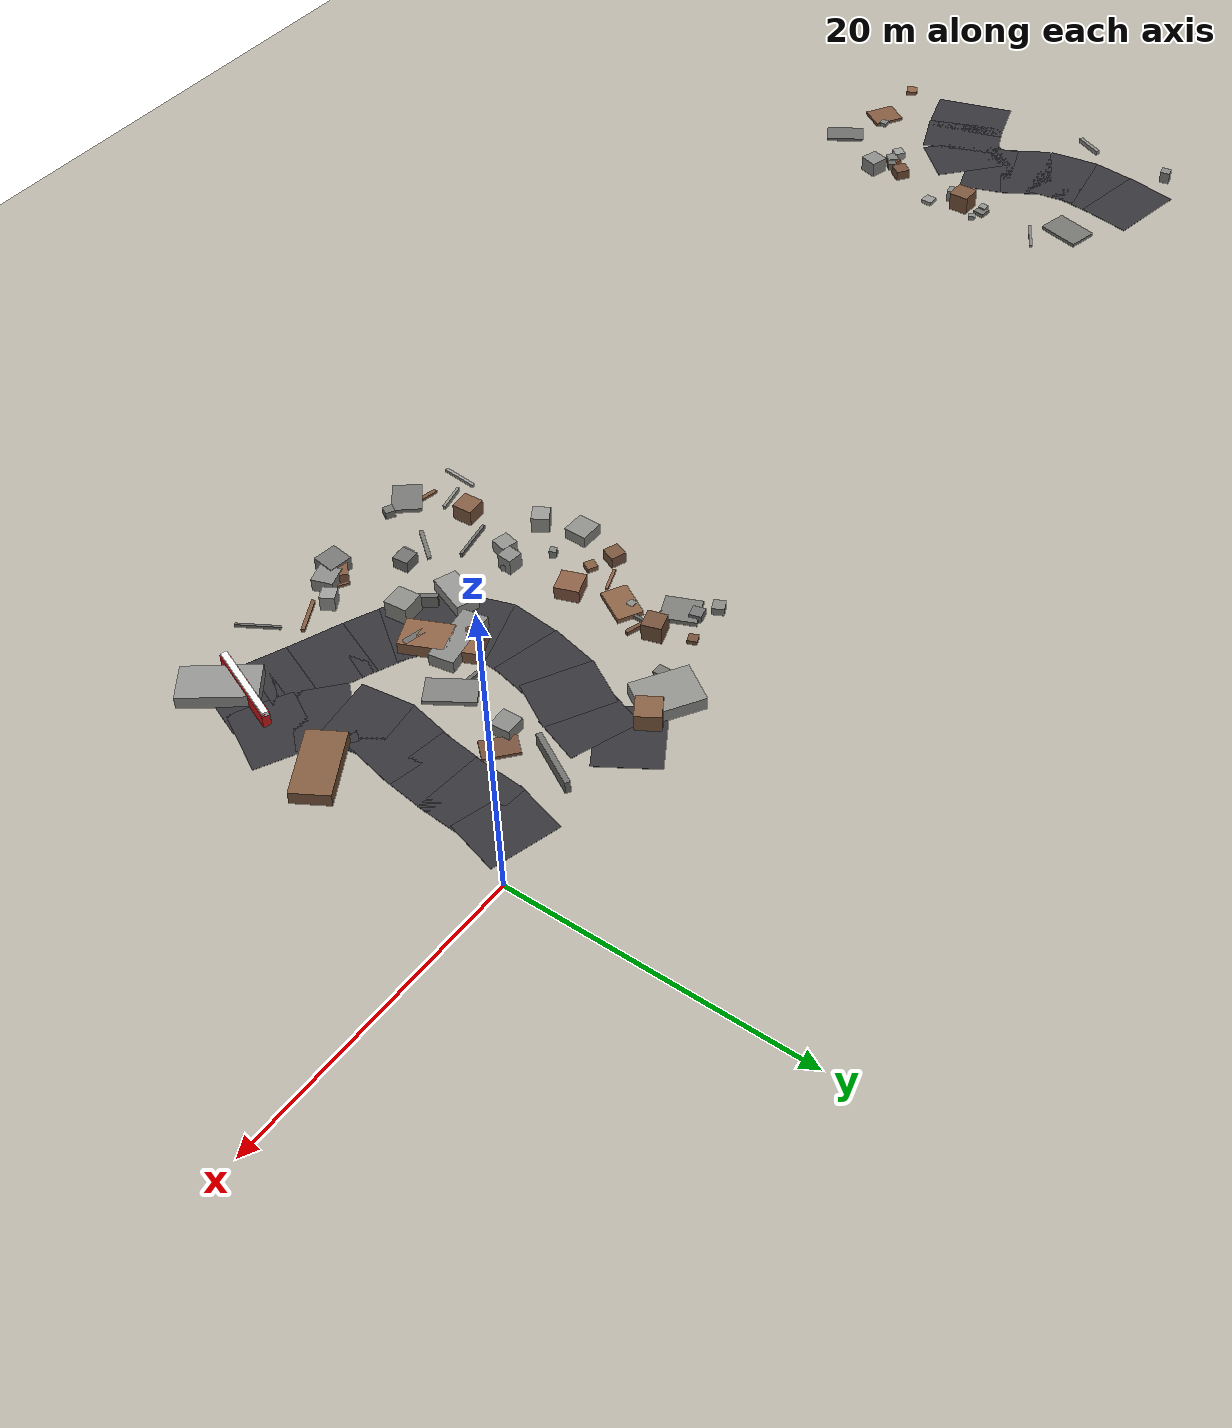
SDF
<sdf version="1.6">
 <world name="navitas_arena">
  <model name="ground_plane">
   <static>true</static>
   <link name="link">
    <collision name="collision">
     <geometry><plane><normal>0 0 1</normal><size>400 400</size></plane></geometry>
     <surface><friction><ode><mu>0.720</mu><mu2>0.720</mu2></ode></friction></surface>
    </collision>
    <visual name="visual">
     <cast_shadows>false</cast_shadows>
     <geometry><plane><normal>0 0 1</normal><size>400 400</size></plane></geometry>
     <material><ambient>0.720 0.700 0.650 1</ambient><diffuse>0.720 0.700 0.650 1</diffuse></material>
    </visual>
   </link>
  </model>
  <model name="road_kolay_3_5">
   <static>true</static>
   <pose>-77.285 -17.460 0.040 0 0 0.309</pose>
   <link name="link">
    <collision name="col"><geometry><box><size>3.737 5.520 0.020</size></box></geometry></collision>
    <visual name="vis">
     <geometry><box><size>3.737 5.520 0.020</size></box></geometry>
     <material><ambient>0.20 0.20 0.22 1</ambient><diffuse>0.20 0.20 0.22 1</diffuse></material>
    </visual>
   </link>
  </model>
  <model name="road_kolay_3_6">
   <static>true</static>
   <pose>-74.788 -16.552 0.040 0 0 0.394</pose>
   <link name="link">
    <collision name="col"><geometry><box><size>3.382 5.520 0.020</size></box></geometry></collision>
    <visual name="vis">
     <geometry><box><size>3.382 5.520 0.020</size></box></geometry>
     <material><ambient>0.20 0.20 0.22 1</ambient><diffuse>0.20 0.20 0.22 1</diffuse></material>
    </visual>
   </link>
  </model>
  <model name="road_kolay_3_7">
   <static>true</static>
   <pose>-72.720 -15.027 0.040 0 0 0.850</pose>
   <link name="link">
    <collision name="col"><geometry><box><size>3.693 5.520 0.020</size></box></geometry></collision>
    <visual name="vis">
     <geometry><box><size>3.693 5.520 0.020</size></box></geometry>
     <material><ambient>0.20 0.20 0.22 1</ambient><diffuse>0.20 0.20 0.22 1</diffuse></material>
    </visual>
   </link>
  </model>
  <model name="road_kolay_3_8">
   <static>true</static>
   <pose>-72.225 -12.817 0.040 0 0 1.923</pose>
   <link name="link">
    <collision name="col"><geometry><box><size>3.374 5.520 0.020</size></box></geometry></collision>
    <visual name="vis">
     <geometry><box><size>3.374 5.520 0.020</size></box></geometry>
     <material><ambient>0.20 0.20 0.22 1</ambient><diffuse>0.20 0.20 0.22 1</diffuse></material>
    </visual>
   </link>
  </model>
  <model name="road_kolay_3_9">
   <static>true</static>
   <pose>-73.377 -10.426 0.040 0 0 2.103</pose>
   <link name="link">
    <collision name="col"><geometry><box><size>3.756 5.520 0.020</size></box></geometry></collision>
    <visual name="vis">
     <geometry><box><size>3.756 5.520 0.020</size></box></geometry>
     <material><ambient>0.20 0.20 0.22 1</ambient><diffuse>0.20 0.20 0.22 1</diffuse></material>
    </visual>
   </link>
  </model>
  <model name="road_kolay_3_10">
   <static>true</static>
   <pose>-74.319 -7.898 0.040 0 0 1.736</pose>
   <link name="link">
    <collision name="col"><geometry><box><size>3.532 5.520 0.020</size></box></geometry></collision>
    <visual name="vis">
     <geometry><box><size>3.532 5.520 0.020</size></box></geometry>
     <material><ambient>0.20 0.20 0.22 1</ambient><diffuse>0.20 0.20 0.22 1</diffuse></material>
    </visual>
   </link>
  </model>
  <model name="road_kolay_3_11">
   <static>true</static>
   <pose>-74.399 -5.200 0.040 0 0 1.473</pose>
   <link name="link">
    <collision name="col"><geometry><box><size>3.713 5.520 0.020</size></box></geometry></collision>
    <visual name="vis">
     <geometry><box><size>3.713 5.520 0.020</size></box></geometry>
     <material><ambient>0.20 0.20 0.22 1</ambient><diffuse>0.20 0.20 0.22 1</diffuse></material>
    </visual>
   </link>
  </model>
  <model name="road_kolay_3_12">
   <static>true</static>
   <pose>-74.010 -2.400 0.040 0 0 1.393</pose>
   <link name="link">
    <collision name="col"><geometry><box><size>3.745 5.520 0.020</size></box></geometry></collision>
    <visual name="vis">
     <geometry><box><size>3.745 5.520 0.020</size></box></geometry>
     <material><ambient>0.20 0.20 0.22 1</ambient><diffuse>0.20 0.20 0.22 1</diffuse></material>
    </visual>
   </link>
  </model>
  <model name="deb_kolay_3">
   <static>true</static>
   <pose>-68.802 -18.934 0.191 0 0 1.292</pose>
   <link name="link">
    <collision name="col"><geometry><box><size>0.744 0.744 0.382</size></box></geometry></collision>
    <visual name="vis">
     <geometry><box><size>0.744 0.744 0.382</size></box></geometry>
     <material><ambient>0.52 0.36 0.26 1</ambient><diffuse>0.52 0.36 0.26 1</diffuse></material>
    </visual>
   </link>
  </model>
  <model name="deb_kolay_7">
   <static>true</static>
   <pose>-77.842 -22.939 0.149 0 0 2.033</pose>
   <link name="link">
    <collision name="col"><geometry><box><size>0.762 0.762 0.298</size></box></geometry></collision>
    <visual name="vis">
     <geometry><box><size>0.762 0.762 0.298</size></box></geometry>
     <material><ambient>0.55 0.38 0.27 1</ambient><diffuse>0.55 0.38 0.27 1</diffuse></material>
    </visual>
   </link>
  </model>
  <model name="deb_kolay_29">
   <static>true</static>
   <pose>-68.894 -19.140 0.262 0 0 2.392</pose>
   <link name="link">
    <collision name="col"><geometry><box><size>0.759 0.759 0.524</size></box></geometry></collision>
    <visual name="vis">
     <geometry><box><size>0.759 0.759 0.524</size></box></geometry>
     <material><ambient>0.50 0.50 0.49 1</ambient><diffuse>0.50 0.50 0.49 1</diffuse></material>
    </visual>
   </link>
  </model>
  <model name="deb_kolay_34">
   <static>true</static>
   <pose>-67.031 -10.445 0.145 0 0 1.428</pose>
   <link name="link">
    <collision name="col"><geometry><box><size>0.779 0.779 0.290</size></box></geometry></collision>
    <visual name="vis">
     <geometry><box><size>0.779 0.779 0.290</size></box></geometry>
     <material><ambient>0.45 0.45 0.44 1</ambient><diffuse>0.45 0.45 0.44 1</diffuse></material>
    </visual>
   </link>
  </model>
  <model name="deb_kolay_42">
   <static>true</static>
   <pose>-66.975 -11.992 0.659 0 0 0.030</pose>
   <link name="link">
    <collision name="col"><geometry><box><size>1.385 1.385 1.319</size></box></geometry></collision>
    <visual name="vis">
     <geometry><box><size>1.385 1.385 1.319</size></box></geometry>
     <material><ambient>0.48 0.34 0.24 1</ambient><diffuse>0.48 0.34 0.24 1</diffuse></material>
    </visual>
   </link>
  </model>
  <model name="deb_kolay_43">
   <static>true</static>
   <pose>-66.582 -6.181 0.075 0 0 0.546</pose>
   <link name="link">
    <collision name="col"><geometry><box><size>2.427 0.196 0.149</size></box></geometry></collision>
    <visual name="vis">
     <geometry><box><size>2.427 0.196 0.149</size></box></geometry>
     <material><ambient>0.51 0.51 0.50 1</ambient><diffuse>0.51 0.51 0.50 1</diffuse></material>
    </visual>
   </link>
  </model>
  <model name="deb_kolay_55">
   <static>true</static>
   <pose>-66.086 -10.686 0.170 0 0 0.541</pose>
   <link name="link">
    <collision name="col"><geometry><box><size>0.444 0.444 0.341</size></box></geometry></collision>
    <visual name="vis">
     <geometry><box><size>0.444 0.444 0.341</size></box></geometry>
     <material><ambient>0.54 0.54 0.53 1</ambient><diffuse>0.54 0.54 0.53 1</diffuse></material>
    </visual>
   </link>
  </model>
  <model name="deb_kolay_57">
   <static>true</static>
   <pose>-66.126 -14.284 0.141 0 0 3.105</pose>
   <link name="link">
    <collision name="col"><geometry><box><size>0.763 0.763 0.282</size></box></geometry></collision>
    <visual name="vis">
     <geometry><box><size>0.763 0.763 0.282</size></box></geometry>
     <material><ambient>0.59 0.59 0.58 1</ambient><diffuse>0.59 0.59 0.58 1</diffuse></material>
    </visual>
   </link>
  </model>
  <model name="deb_kolay_59">
   <static>true</static>
   <pose>-67.296 -19.721 0.538 0 0 1.303</pose>
   <link name="link">
    <collision name="col"><geometry><box><size>1.244 1.244 1.077</size></box></geometry></collision>
    <visual name="vis">
     <geometry><box><size>1.244 1.244 1.077</size></box></geometry>
     <material><ambient>0.54 0.54 0.53 1</ambient><diffuse>0.54 0.54 0.53 1</diffuse></material>
    </visual>
   </link>
  </model>
  <model name="deb_kolay_73">
   <static>true</static>
   <pose>-67.407 -10.521 0.204 0 0 3.095</pose>
   <link name="link">
    <collision name="col"><geometry><box><size>0.555 0.555 0.408</size></box></geometry></collision>
    <visual name="vis">
     <geometry><box><size>0.555 0.555 0.408</size></box></geometry>
     <material><ambient>0.56 0.56 0.55 1</ambient><diffuse>0.56 0.56 0.55 1</diffuse></material>
    </visual>
   </link>
  </model>
  <model name="deb_kolay_79">
   <static>true</static>
   <pose>-78.868 -8.147 0.169 0 0 1.158</pose>
   <link name="link">
    <collision name="col"><geometry><box><size>2.001 0.264 0.337</size></box></geometry></collision>
    <visual name="vis">
     <geometry><box><size>2.001 0.264 0.337</size></box></geometry>
     <material><ambient>0.56 0.56 0.54 1</ambient><diffuse>0.56 0.56 0.54 1</diffuse></material>
    </visual>
   </link>
  </model>
  <model name="deb_kolay_92">
   <static>true</static>
   <pose>-73.691 -22.834 0.111 0 0 2.586</pose>
   <link name="link">
    <collision name="col"><geometry><box><size>2.104 1.817 0.222</size></box></geometry></collision>
    <visual name="vis">
     <geometry><box><size>2.104 1.817 0.222</size></box></geometry>
     <material><ambient>0.51 0.35 0.25 1</ambient><diffuse>0.51 0.35 0.25 1</diffuse></material>
    </visual>
   </link>
  </model>
  <model name="deb_kolay_106">
   <static>true</static>
   <pose>-67.795 -17.724 0.344 0 0 2.514</pose>
   <link name="link">
    <collision name="col"><geometry><box><size>0.981 0.981 0.688</size></box></geometry></collision>
    <visual name="vis">
     <geometry><box><size>0.981 0.981 0.688</size></box></geometry>
     <material><ambient>0.46 0.32 0.23 1</ambient><diffuse>0.46 0.32 0.23 1</diffuse></material>
    </visual>
   </link>
  </model>
  <model name="deb_kolay_111">
   <static>true</static>
   <pose>-72.807 -22.286 0.152 0 0 1.654</pose>
   <link name="link">
    <collision name="col"><geometry><box><size>0.513 0.513 0.304</size></box></geometry></collision>
    <visual name="vis">
     <geometry><box><size>0.513 0.513 0.304</size></box></geometry>
     <material><ambient>0.51 0.51 0.50 1</ambient><diffuse>0.51 0.51 0.50 1</diffuse></material>
    </visual>
   </link>
  </model>
  <model name="deb_kolay_116">
   <static>true</static>
   <pose>-68.241 -18.748 0.259 0 0 2.274</pose>
   <link name="link">
    <collision name="col"><geometry><box><size>0.561 0.561 0.518</size></box></geometry></collision>
    <visual name="vis">
     <geometry><box><size>0.561 0.561 0.518</size></box></geometry>
     <material><ambient>0.41 0.41 0.40 1</ambient><diffuse>0.41 0.41 0.40 1</diffuse></material>
    </visual>
   </link>
  </model>
  <model name="deb_kolay_122">
   <static>true</static>
   <pose>-68.539 -4.283 0.119 0 0 1.338</pose>
   <link name="link">
    <collision name="col"><geometry><box><size>2.959 2.043 0.239</size></box></geometry></collision>
    <visual name="vis">
     <geometry><box><size>2.959 2.043 0.239</size></box></geometry>
     <material><ambient>0.45 0.45 0.44 1</ambient><diffuse>0.45 0.45 0.44 1</diffuse></material>
    </visual>
   </link>
  </model>
  <model name="deb_kolay_123">
   <static>true</static>
   <pose>-69.918 -23.902 0.114 0 0 2.121</pose>
   <link name="link">
    <collision name="col"><geometry><box><size>2.651 1.473 0.228</size></box></geometry></collision>
    <visual name="vis">
     <geometry><box><size>2.651 1.473 0.228</size></box></geometry>
     <material><ambient>0.42 0.42 0.41 1</ambient><diffuse>0.42 0.42 0.41 1</diffuse></material>
    </visual>
   </link>
  </model>
  <model name="deb_kolay_126">
   <static>true</static>
   <pose>-69.725 -19.113 0.280 0 0 0.949</pose>
   <link name="link">
    <collision name="col"><geometry><box><size>0.736 0.736 0.561</size></box></geometry></collision>
    <visual name="vis">
     <geometry><box><size>0.736 0.736 0.561</size></box></geometry>
     <material><ambient>0.60 0.60 0.59 1</ambient><diffuse>0.60 0.60 0.59 1</diffuse></material>
    </visual>
   </link>
  </model>
  <model name="chic_kolay_1">
   <static>true</static>
   <pose>-67.395 -13.054 0.425 0 0 0.204</pose>
   <link name="link">
    <collision name="col"><geometry><box><size>0.697 0.697 0.850</size></box></geometry></collision>
    <visual name="vis">
     <geometry><box><size>0.697 0.697 0.850</size></box></geometry>
     <material><ambient>0.53 0.53 0.52 1</ambient><diffuse>0.53 0.53 0.52 1</diffuse></material>
    </visual>
   </link>
  </model>
  <model name="chic_kolay_2">
   <static>true</static>
   <pose>-78.310 -1.615 0.425 0 0 1.802</pose>
   <link name="link">
    <collision name="col"><geometry><box><size>0.662 0.662 0.850</size></box></geometry></collision>
    <visual name="vis">
     <geometry><box><size>0.662 0.662 0.850</size></box></geometry>
     <material><ambient>0.52 0.52 0.51 1</ambient><diffuse>0.52 0.52 0.51 1</diffuse></material>
    </visual>
   </link>
  </model>
  <model name="road_orta_1_2">
   <static>true</static>
   <pose>-2.208 -20.524 0.040 0 0 2.769</pose>
   <link name="link">
    <collision name="col"><geometry><box><size>3.732 4.600 0.020</size></box></geometry></collision>
    <visual name="vis">
     <geometry><box><size>3.732 4.600 0.020</size></box></geometry>
     <material><ambient>0.20 0.20 0.22 1</ambient><diffuse>0.20 0.20 0.22 1</diffuse></material>
    </visual>
   </link>
  </model>
  <model name="road_orta_1_3">
   <static>true</static>
   <pose>-4.714 -19.506 0.040 0 0 2.741</pose>
   <link name="link">
    <collision name="col"><geometry><box><size>3.479 4.600 0.020</size></box></geometry></collision>
    <visual name="vis">
     <geometry><box><size>3.479 4.600 0.020</size></box></geometry>
     <material><ambient>0.20 0.20 0.22 1</ambient><diffuse>0.20 0.20 0.22 1</diffuse></material>
    </visual>
   </link>
  </model>
  <model name="road_orta_1_4">
   <static>true</static>
   <pose>-7.164 -18.499 0.040 0 0 2.762</pose>
   <link name="link">
    <collision name="col"><geometry><box><size>3.618 4.600 0.020</size></box></geometry></collision>
    <visual name="vis">
     <geometry><box><size>3.618 4.600 0.020</size></box></geometry>
     <material><ambient>0.20 0.20 0.22 1</ambient><diffuse>0.20 0.20 0.22 1</diffuse></material>
    </visual>
   </link>
  </model>
  <model name="road_orta_1_5">
   <static>true</static>
   <pose>-9.644 -17.455 0.040 0 0 2.724</pose>
   <link name="link">
    <collision name="col"><geometry><box><size>3.565 4.600 0.020</size></box></geometry></collision>
    <visual name="vis">
     <geometry><box><size>3.565 4.600 0.020</size></box></geometry>
     <material><ambient>0.20 0.20 0.22 1</ambient><diffuse>0.20 0.20 0.22 1</diffuse></material>
    </visual>
   </link>
  </model>
  <model name="road_orta_1_6">
   <static>true</static>
   <pose>-12.191 -15.957 0.040 0 0 2.518</pose>
   <link name="link">
    <collision name="col"><geometry><box><size>4.177 4.600 0.020</size></box></geometry></collision>
    <visual name="vis">
     <geometry><box><size>4.177 4.600 0.020</size></box></geometry>
     <material><ambient>0.20 0.20 0.22 1</ambient><diffuse>0.20 0.20 0.22 1</diffuse></material>
    </visual>
   </link>
  </model>
  <model name="road_orta_1_7">
   <static>true</static>
   <pose>-13.953 -13.690 0.040 0 0 1.889</pose>
   <link name="link">
    <collision name="col"><geometry><box><size>3.658 4.600 0.020</size></box></geometry></collision>
    <visual name="vis">
     <geometry><box><size>3.658 4.600 0.020</size></box></geometry>
     <material><ambient>0.20 0.20 0.22 1</ambient><diffuse>0.20 0.20 0.22 1</diffuse></material>
    </visual>
   </link>
  </model>
  <model name="road_orta_1_8">
   <static>true</static>
   <pose>-14.231 -10.910 0.040 0 0 1.467</pose>
   <link name="link">
    <collision name="col"><geometry><box><size>3.856 4.600 0.020</size></box></geometry></collision>
    <visual name="vis">
     <geometry><box><size>3.856 4.600 0.020</size></box></geometry>
     <material><ambient>0.20 0.20 0.22 1</ambient><diffuse>0.20 0.20 0.22 1</diffuse></material>
    </visual>
   </link>
  </model>
  <model name="road_orta_1_9">
   <static>true</static>
   <pose>-13.781 -8.137 0.040 0 0 1.347</pose>
   <link name="link">
    <collision name="col"><geometry><box><size>3.574 4.600 0.020</size></box></geometry></collision>
    <visual name="vis">
     <geometry><box><size>3.574 4.600 0.020</size></box></geometry>
     <material><ambient>0.20 0.20 0.22 1</ambient><diffuse>0.20 0.20 0.22 1</diffuse></material>
    </visual>
   </link>
  </model>
  <model name="road_orta_1_10">
   <static>true</static>
   <pose>-12.831 -5.667 0.040 0 0 1.061</pose>
   <link name="link">
    <collision name="col"><geometry><box><size>3.574 4.600 0.020</size></box></geometry></collision>
    <visual name="vis">
     <geometry><box><size>3.574 4.600 0.020</size></box></geometry>
     <material><ambient>0.20 0.20 0.22 1</ambient><diffuse>0.20 0.20 0.22 1</diffuse></material>
    </visual>
   </link>
  </model>
  <model name="road_orta_1_11">
   <static>true</static>
   <pose>-11.758 -3.333 0.040 0 0 1.225</pose>
   <link name="link">
    <collision name="col"><geometry><box><size>3.381 4.600 0.020</size></box></geometry></collision>
    <visual name="vis">
     <geometry><box><size>3.381 4.600 0.020</size></box></geometry>
     <material><ambient>0.20 0.20 0.22 1</ambient><diffuse>0.20 0.20 0.22 1</diffuse></material>
    </visual>
   </link>
  </model>
  <model name="road_orta_1_12">
   <static>true</static>
   <pose>-12.185 -0.806 0.040 0 0 2.128</pose>
   <link name="link">
    <collision name="col"><geometry><box><size>4.108 4.600 0.020</size></box></geometry></collision>
    <visual name="vis">
     <geometry><box><size>4.108 4.600 0.020</size></box></geometry>
     <material><ambient>0.20 0.20 0.22 1</ambient><diffuse>0.20 0.20 0.22 1</diffuse></material>
    </visual>
   </link>
  </model>
  <model name="road_orta_2_2">
   <static>true</static>
   <pose>-1.134 -17.444 0.040 0 0 2.661</pose>
   <link name="link">
    <collision name="col"><geometry><box><size>4.025 4.600 0.020</size></box></geometry></collision>
    <visual name="vis">
     <geometry><box><size>4.025 4.600 0.020</size></box></geometry>
     <material><ambient>0.20 0.20 0.22 1</ambient><diffuse>0.20 0.20 0.22 1</diffuse></material>
    </visual>
   </link>
  </model>
  <model name="road_orta_2_3">
   <static>true</static>
   <pose>-3.488 -15.861 0.040 0 0 2.415</pose>
   <link name="link">
    <collision name="col"><geometry><box><size>3.492 4.600 0.020</size></box></geometry></collision>
    <visual name="vis">
     <geometry><box><size>3.492 4.600 0.020</size></box></geometry>
     <material><ambient>0.20 0.20 0.22 1</ambient><diffuse>0.20 0.20 0.22 1</diffuse></material>
    </visual>
   </link>
  </model>
  <model name="road_orta_2_4">
   <static>true</static>
   <pose>-4.627 -13.690 0.040 0 0 1.700</pose>
   <link name="link">
    <collision name="col"><geometry><box><size>3.542 4.600 0.020</size></box></geometry></collision>
    <visual name="vis">
     <geometry><box><size>3.542 4.600 0.020</size></box></geometry>
     <material><ambient>0.20 0.20 0.22 1</ambient><diffuse>0.20 0.20 0.22 1</diffuse></material>
    </visual>
   </link>
  </model>
  <model name="road_orta_2_5">
   <static>true</static>
   <pose>-4.480 -10.910 0.040 0 0 1.358</pose>
   <link name="link">
    <collision name="col"><geometry><box><size>3.908 4.600 0.020</size></box></geometry></collision>
    <visual name="vis">
     <geometry><box><size>3.908 4.600 0.020</size></box></geometry>
     <material><ambient>0.20 0.20 0.22 1</ambient><diffuse>0.20 0.20 0.22 1</diffuse></material>
    </visual>
   </link>
  </model>
  <model name="road_orta_2_6">
   <static>true</static>
   <pose>-3.968 -8.020 0.040 0 0 1.435</pose>
   <link name="link">
    <collision name="col"><geometry><box><size>3.766 4.600 0.020</size></box></geometry></collision>
    <visual name="vis">
     <geometry><box><size>3.766 4.600 0.020</size></box></geometry>
     <material><ambient>0.20 0.20 0.22 1</ambient><diffuse>0.20 0.20 0.22 1</diffuse></material>
    </visual>
   </link>
  </model>
  <model name="road_orta_2_7">
   <static>true</static>
   <pose>-3.668 -5.200 0.040 0 0 1.495</pose>
   <link name="link">
    <collision name="col"><geometry><box><size>3.708 4.600 0.020</size></box></geometry></collision>
    <visual name="vis">
     <geometry><box><size>3.708 4.600 0.020</size></box></geometry>
     <material><ambient>0.20 0.20 0.22 1</ambient><diffuse>0.20 0.20 0.22 1</diffuse></material>
    </visual>
   </link>
  </model>
  <model name="road_orta_2_8">
   <static>true</static>
   <pose>-3.162 -2.400 0.040 0 0 1.292</pose>
   <link name="link">
    <collision name="col"><geometry><box><size>3.812 4.600 0.020</size></box></geometry></collision>
    <visual name="vis">
     <geometry><box><size>3.812 4.600 0.020</size></box></geometry>
     <material><ambient>0.20 0.20 0.22 1</ambient><diffuse>0.20 0.20 0.22 1</diffuse></material>
    </visual>
   </link>
  </model>
  <model name="bar_orta_1">
   <static>true</static>
   <pose>-2.230 -20.527 0.500 0 0 4.332</pose>
   <link name="link">
    <collision name="col"><geometry><box><size>5.600 0.500 1.000</size></box></geometry></collision>
    <visual name="vis">
     <geometry><box><size>5.600 0.500 1.000</size></box></geometry>
     <material><ambient>0.85 0.10 0.10 1</ambient><diffuse>0.85 0.10 0.10 1</diffuse></material>
    </visual>
   </link>
  </model>
  <model name="bar_orta_1b">
   <static>true</static>
   <pose>-2.230 -20.527 1.000 0 0 4.332</pose>
   <link name="link">
    <collision name="col"><geometry><box><size>5.600 0.400 0.300</size></box></geometry></collision>
    <visual name="vis">
     <geometry><box><size>5.600 0.400 0.300</size></box></geometry>
     <material><ambient>0.95 0.95 0.95 1</ambient><diffuse>0.95 0.95 0.95 1</diffuse></material>
    </visual>
   </link>
  </model>
  <model name="blk_orta_1_0_0">
   <static>true</static>
   <pose>-12.397 -12.722 0.425 0 0 2.357</pose>
   <link name="link">
    <collision name="col"><geometry><box><size>0.888 0.888 0.850</size></box></geometry></collision>
    <visual name="vis">
     <geometry><box><size>0.888 0.888 0.850</size></box></geometry>
     <material><ambient>0.45 0.32 0.23 1</ambient><diffuse>0.45 0.32 0.23 1</diffuse></material>
    </visual>
   </link>
  </model>
  <model name="blk_orta_1_0_1">
   <static>true</static>
   <pose>-13.395 -17.343 0.425 0 0 2.158</pose>
   <link name="link">
    <collision name="col"><geometry><box><size>2.482 0.313 0.850</size></box></geometry></collision>
    <visual name="vis">
     <geometry><box><size>2.482 0.313 0.850</size></box></geometry>
     <material><ambient>0.42 0.42 0.41 1</ambient><diffuse>0.42 0.42 0.41 1</diffuse></material>
    </visual>
   </link>
  </model>
  <model name="blk_orta_1_0_2">
   <static>true</static>
   <pose>-12.221 -13.202 0.425 0 0 0.178</pose>
   <link name="link">
    <collision name="col"><geometry><box><size>4.098 1.655 0.850</size></box></geometry></collision>
    <visual name="vis">
     <geometry><box><size>4.098 1.655 0.850</size></box></geometry>
     <material><ambient>0.54 0.54 0.53 1</ambient><diffuse>0.54 0.54 0.53 1</diffuse></material>
    </visual>
   </link>
  </model>
  <model name="blk_orta_1_0_3">
   <static>true</static>
   <pose>-11.137 -15.172 0.425 0 0 2.913</pose>
   <link name="link">
    <collision name="col"><geometry><box><size>2.336 0.413 0.850</size></box></geometry></collision>
    <visual name="vis">
     <geometry><box><size>2.336 0.413 0.850</size></box></geometry>
     <material><ambient>0.42 0.42 0.41 1</ambient><diffuse>0.42 0.42 0.41 1</diffuse></material>
    </visual>
   </link>
  </model>
  <model name="blk_orta_1_0_4">
   <static>true</static>
   <pose>-15.115 -15.787 0.425 0 0 1.204</pose>
   <link name="link">
    <collision name="col"><geometry><box><size>2.830 1.462 0.850</size></box></geometry></collision>
    <visual name="vis">
     <geometry><box><size>2.830 1.462 0.850</size></box></geometry>
     <material><ambient>0.58 0.58 0.57 1</ambient><diffuse>0.58 0.58 0.57 1</diffuse></material>
    </visual>
   </link>
  </model>
  <model name="blk_orta_1_0_5">
   <static>true</static>
   <pose>-11.668 -13.915 0.425 0 0 1.998</pose>
   <link name="link">
    <collision name="col"><geometry><box><size>4.903 2.116 0.850</size></box></geometry></collision>
    <visual name="vis">
     <geometry><box><size>4.903 2.116 0.850</size></box></geometry>
     <material><ambient>0.55 0.38 0.27 1</ambient><diffuse>0.55 0.38 0.27 1</diffuse></material>
    </visual>
   </link>
  </model>
  <model name="blk_orta_1_0_6">
   <static>true</static>
   <pose>-12.423 -17.592 0.622 0 0 0.086</pose>
   <link name="link">
    <collision name="col"><geometry><box><size>1.535 1.535 1.244</size></box></geometry></collision>
    <visual name="vis">
     <geometry><box><size>1.535 1.535 1.244</size></box></geometry>
     <material><ambient>0.54 0.54 0.52 1</ambient><diffuse>0.54 0.54 0.52 1</diffuse></material>
    </visual>
   </link>
  </model>
  <model name="blk_orta_1_1_0">
   <static>true</static>
   <pose>-13.801 -0.693 0.594 0 0 2.148</pose>
   <link name="link">
    <collision name="col"><geometry><box><size>1.609 1.609 1.187</size></box></geometry></collision>
    <visual name="vis">
     <geometry><box><size>1.609 1.609 1.187</size></box></geometry>
     <material><ambient>0.52 0.37 0.26 1</ambient><diffuse>0.52 0.37 0.26 1</diffuse></material>
    </visual>
   </link>
  </model>
  <model name="blk_orta_1_1_4">
   <static>true</static>
   <pose>-15.623 -0.745 0.425 0 0 2.577</pose>
   <link name="link">
    <collision name="col"><geometry><box><size>3.778 2.833 0.850</size></box></geometry></collision>
    <visual name="vis">
     <geometry><box><size>3.778 2.833 0.850</size></box></geometry>
     <material><ambient>0.56 0.56 0.55 1</ambient><diffuse>0.56 0.56 0.55 1</diffuse></material>
    </visual>
   </link>
  </model>
  <model name="deb_orta_1">
   <static>true</static>
   <pose>-12.883 -23.506 0.466 0 0 1.435</pose>
   <link name="link">
    <collision name="col"><geometry><box><size>1.551 1.551 0.933</size></box></geometry></collision>
    <visual name="vis">
     <geometry><box><size>1.551 1.551 0.933</size></box></geometry>
     <material><ambient>0.46 0.46 0.45 1</ambient><diffuse>0.46 0.46 0.45 1</diffuse></material>
    </visual>
   </link>
  </model>
  <model name="deb_orta_3">
   <static>true</static>
   <pose>-17.593 -20.363 0.071 0 0 0.911</pose>
   <link name="link">
    <collision name="col"><geometry><box><size>2.537 0.257 0.142</size></box></geometry></collision>
    <visual name="vis">
     <geometry><box><size>2.537 0.257 0.142</size></box></geometry>
     <material><ambient>0.45 0.45 0.44 1</ambient><diffuse>0.45 0.45 0.44 1</diffuse></material>
    </visual>
   </link>
  </model>
  <model name="deb_orta_10">
   <static>true</static>
   <pose>-20.331 -2.323 0.143 0 0 1.937</pose>
   <link name="link">
    <collision name="col"><geometry><box><size>0.614 0.614 0.286</size></box></geometry></collision>
    <visual name="vis">
     <geometry><box><size>0.614 0.614 0.286</size></box></geometry>
     <material><ambient>0.45 0.32 0.23 1</ambient><diffuse>0.45 0.32 0.23 1</diffuse></material>
    </visual>
   </link>
  </model>
  <model name="deb_orta_11">
   <static>true</static>
   <pose>-19.481 -10.660 0.456 0 0 0.343</pose>
   <link name="link">
    <collision name="col"><geometry><box><size>1.567 1.567 0.912</size></box></geometry></collision>
    <visual name="vis">
     <geometry><box><size>1.567 1.567 0.912</size></box></geometry>
     <material><ambient>0.54 0.37 0.27 1</ambient><diffuse>0.54 0.37 0.27 1</diffuse></material>
    </visual>
   </link>
  </model>
  <model name="deb_orta_18">
   <static>true</static>
   <pose>-12.467 -22.833 0.384 0 0 2.405</pose>
   <link name="link">
    <collision name="col"><geometry><box><size>1.295 1.295 0.769</size></box></geometry></collision>
    <visual name="vis">
     <geometry><box><size>1.295 1.295 0.769</size></box></geometry>
     <material><ambient>0.50 0.35 0.25 1</ambient><diffuse>0.50 0.35 0.25 1</diffuse></material>
    </visual>
   </link>
  </model>
  <model name="deb_orta_25">
   <static>true</static>
   <pose>-11.830 -22.248 0.098 0 0 2.588</pose>
   <link name="link">
    <collision name="col"><geometry><box><size>1.502 0.179 0.196</size></box></geometry></collision>
    <visual name="vis">
     <geometry><box><size>1.502 0.179 0.196</size></box></geometry>
     <material><ambient>0.48 0.34 0.24 1</ambient><diffuse>0.48 0.34 0.24 1</diffuse></material>
    </visual>
   </link>
  </model>
  <model name="deb_orta_31">
   <static>true</static>
   <pose>-21.174 -19.909 0.544 0 0 1.629</pose>
   <link name="link">
    <collision name="col"><geometry><box><size>1.312 1.312 1.087</size></box></geometry></collision>
    <visual name="vis">
     <geometry><box><size>1.312 1.312 1.087</size></box></geometry>
     <material><ambient>0.51 0.36 0.26 1</ambient><diffuse>0.51 0.36 0.26 1</diffuse></material>
    </visual>
   </link>
  </model>
  <model name="deb_orta_33">
   <static>true</static>
   <pose>-21.779 -10.931 0.164 0 0 1.078</pose>
   <link name="link">
    <collision name="col"><geometry><box><size>0.685 0.685 0.329</size></box></geometry></collision>
    <visual name="vis">
     <geometry><box><size>0.685 0.685 0.329</size></box></geometry>
     <material><ambient>0.51 0.36 0.25 1</ambient><diffuse>0.51 0.36 0.25 1</diffuse></material>
    </visual>
   </link>
  </model>
  <model name="deb_orta_34">
   <static>true</static>
   <pose>-20.105 -23.976 0.130 0 0 0.701</pose>
   <link name="link">
    <collision name="col"><geometry><box><size>2.301 1.860 0.259</size></box></geometry></collision>
    <visual name="vis">
     <geometry><box><size>2.301 1.860 0.259</size></box></geometry>
     <material><ambient>0.46 0.46 0.45 1</ambient><diffuse>0.46 0.46 0.45 1</diffuse></material>
    </visual>
   </link>
  </model>
  <model name="deb_orta_37">
   <static>true</static>
   <pose>-9.041 -11.127 0.150 0 0 2.138</pose>
   <link name="link">
    <collision name="col"><geometry><box><size>3.166 1.806 0.301</size></box></geometry></collision>
    <visual name="vis">
     <geometry><box><size>3.166 1.806 0.301</size></box></geometry>
     <material><ambient>0.50 0.50 0.49 1</ambient><diffuse>0.50 0.50 0.49 1</diffuse></material>
    </visual>
   </link>
  </model>
  <model name="deb_orta_42">
   <static>true</static>
   <pose>-21.680 -21.727 0.143 0 0 0.214</pose>
   <link name="link">
    <collision name="col"><geometry><box><size>1.874 0.178 0.285</size></box></geometry></collision>
    <visual name="vis">
     <geometry><box><size>1.874 0.178 0.285</size></box></geometry>
     <material><ambient>0.56 0.56 0.54 1</ambient><diffuse>0.56 0.56 0.54 1</diffuse></material>
    </visual>
   </link>
  </model>
  <model name="deb_orta_53">
   <static>true</static>
   <pose>-8.631 -6.745 0.422 0 0 0.054</pose>
   <link name="link">
    <collision name="col"><geometry><box><size>1.318 1.318 0.845</size></box></geometry></collision>
    <visual name="vis">
     <geometry><box><size>1.318 1.318 0.845</size></box></geometry>
     <material><ambient>0.53 0.53 0.52 1</ambient><diffuse>0.53 0.53 0.52 1</diffuse></material>
    </visual>
   </link>
  </model>
  <model name="deb_orta_54">
   <static>true</static>
   <pose>-11.652 -22.897 0.439 0 0 0.322</pose>
   <link name="link">
    <collision name="col"><geometry><box><size>1.401 1.401 0.878</size></box></geometry></collision>
    <visual name="vis">
     <geometry><box><size>1.401 1.401 0.878</size></box></geometry>
     <material><ambient>0.54 0.54 0.53 1</ambient><diffuse>0.54 0.54 0.53 1</diffuse></material>
    </visual>
   </link>
  </model>
  <model name="deb_orta_57">
   <static>true</static>
   <pose>-21.356 -13.439 0.270 0 0 0.416</pose>
   <link name="link">
    <collision name="col"><geometry><box><size>0.443 0.443 0.540</size></box></geometry></collision>
    <visual name="vis">
     <geometry><box><size>0.443 0.443 0.540</size></box></geometry>
     <material><ambient>0.51 0.51 0.50 1</ambient><diffuse>0.51 0.51 0.50 1</diffuse></material>
    </visual>
   </link>
  </model>
  <model name="deb_orta_58">
   <static>true</static>
   <pose>-0.846 -13.448 0.231 0 0 0.881</pose>
   <link name="link">
    <collision name="col"><geometry><box><size>0.467 0.467 0.461</size></box></geometry></collision>
    <visual name="vis">
     <geometry><box><size>0.467 0.467 0.461</size></box></geometry>
     <material><ambient>0.59 0.59 0.58 1</ambient><diffuse>0.59 0.59 0.58 1</diffuse></material>
    </visual>
   </link>
  </model>
  <model name="deb_orta_65">
   <static>true</static>
   <pose>-23.141 -10.155 0.385 0 0 2.775</pose>
   <link name="link">
    <collision name="col"><geometry><box><size>0.995 0.995 0.770</size></box></geometry></collision>
    <visual name="vis">
     <geometry><box><size>0.995 0.995 0.770</size></box></geometry>
     <material><ambient>0.47 0.33 0.24 1</ambient><diffuse>0.47 0.33 0.24 1</diffuse></material>
    </visual>
   </link>
  </model>
  <model name="deb_orta_69">
   <static>true</static>
   <pose>-23.239 -2.543 0.258 0 0 2.020</pose>
   <link name="link">
    <collision name="col"><geometry><box><size>0.786 0.786 0.516</size></box></geometry></collision>
    <visual name="vis">
     <geometry><box><size>0.786 0.786 0.516</size></box></geometry>
     <material><ambient>0.52 0.52 0.51 1</ambient><diffuse>0.52 0.52 0.51 1</diffuse></material>
    </visual>
   </link>
  </model>
  <model name="deb_orta_78">
   <static>true</static>
   <pose>-19.506 -4.474 0.598 0 0 1.863</pose>
   <link name="link">
    <collision name="col"><geometry><box><size>1.279 1.279 1.195</size></box></geometry></collision>
    <visual name="vis">
     <geometry><box><size>1.279 1.279 1.195</size></box></geometry>
     <material><ambient>0.45 0.32 0.23 1</ambient><diffuse>0.45 0.32 0.23 1</diffuse></material>
    </visual>
   </link>
  </model>
  <model name="deb_orta_79">
   <static>true</static>
   <pose>-22.031 -3.240 0.266 0 0 1.817</pose>
   <link name="link">
    <collision name="col"><geometry><box><size>0.783 0.783 0.531</size></box></geometry></collision>
    <visual name="vis">
     <geometry><box><size>0.783 0.783 0.531</size></box></geometry>
     <material><ambient>0.45 0.45 0.45 1</ambient><diffuse>0.45 0.45 0.45 1</diffuse></material>
    </visual>
   </link>
  </model>
  <model name="deb_orta_82">
   <static>true</static>
   <pose>-15.645 -20.220 0.396 0 0 0.084</pose>
   <link name="link">
    <collision name="col"><geometry><box><size>1.077 1.077 0.793</size></box></geometry></collision>
    <visual name="vis">
     <geometry><box><size>1.077 1.077 0.793</size></box></geometry>
     <material><ambient>0.44 0.44 0.43 1</ambient><diffuse>0.44 0.44 0.43 1</diffuse></material>
    </visual>
   </link>
  </model>
  <model name="deb_orta_86">
   <static>true</static>
   <pose>-19.111 -14.963 0.532 0 0 3.046</pose>
   <link name="link">
    <collision name="col"><geometry><box><size>1.008 1.008 1.063</size></box></geometry></collision>
    <visual name="vis">
     <geometry><box><size>1.008 1.008 1.063</size></box></geometry>
     <material><ambient>0.54 0.54 0.53 1</ambient><diffuse>0.54 0.54 0.53 1</diffuse></material>
    </visual>
   </link>
  </model>
  <model name="deb_orta_87">
   <static>true</static>
   <pose>-19.756 -5.397 0.152 0 0 2.836</pose>
   <link name="link">
    <collision name="col"><geometry><box><size>2.681 0.250 0.303</size></box></geometry></collision>
    <visual name="vis">
     <geometry><box><size>2.681 0.250 0.303</size></box></geometry>
     <material><ambient>0.46 0.32 0.23 1</ambient><diffuse>0.46 0.32 0.23 1</diffuse></material>
    </visual>
   </link>
  </model>
  <model name="deb_orta_88">
   <static>true</static>
   <pose>-21.585 -9.293 0.094 0 0 0.359</pose>
   <link name="link">
    <collision name="col"><geometry><box><size>1.641 0.188 0.188</size></box></geometry></collision>
    <visual name="vis">
     <geometry><box><size>1.641 0.188 0.188</size></box></geometry>
     <material><ambient>0.54 0.37 0.27 1</ambient><diffuse>0.54 0.37 0.27 1</diffuse></material>
    </visual>
   </link>
  </model>
  <model name="deb_orta_90">
   <static>true</static>
   <pose>-20.277 -7.443 0.160 0 0 1.057</pose>
   <link name="link">
    <collision name="col"><geometry><box><size>2.516 1.667 0.320</size></box></geometry></collision>
    <visual name="vis">
     <geometry><box><size>2.516 1.667 0.320</size></box></geometry>
     <material><ambient>0.54 0.38 0.27 1</ambient><diffuse>0.54 0.38 0.27 1</diffuse></material>
    </visual>
   </link>
  </model>
  <model name="deb_orta_91">
   <static>true</static>
   <pose>-10.263 -10.887 0.149 0 0 3.059</pose>
   <link name="link">
    <collision name="col"><geometry><box><size>2.585 0.226 0.299</size></box></geometry></collision>
    <visual name="vis">
     <geometry><box><size>2.585 0.226 0.299</size></box></geometry>
     <material><ambient>0.41 0.41 0.40 1</ambient><diffuse>0.41 0.41 0.40 1</diffuse></material>
    </visual>
   </link>
  </model>
  <model name="deb_orta_92">
   <static>true</static>
   <pose>-6.631 -23.794 0.109 0 0 2.098</pose>
   <link name="link">
    <collision name="col"><geometry><box><size>2.770 0.151 0.218</size></box></geometry></collision>
    <visual name="vis">
     <geometry><box><size>2.770 0.151 0.218</size></box></geometry>
     <material><ambient>0.42 0.42 0.41 1</ambient><diffuse>0.42 0.42 0.41 1</diffuse></material>
    </visual>
   </link>
  </model>
  <model name="deb_orta_95">
   <static>true</static>
   <pose>-19.434 -18.167 0.160 0 0 0.182</pose>
   <link name="link">
    <collision name="col"><geometry><box><size>2.811 0.173 0.321</size></box></geometry></collision>
    <visual name="vis">
     <geometry><box><size>2.811 0.173 0.321</size></box></geometry>
     <material><ambient>0.42 0.42 0.41 1</ambient><diffuse>0.42 0.42 0.41 1</diffuse></material>
    </visual>
   </link>
  </model>
  <model name="deb_orta_100">
   <static>true</static>
   <pose>-20.554 -6.936 0.172 0 0 1.523</pose>
   <link name="link">
    <collision name="col"><geometry><box><size>0.489 0.489 0.344</size></box></geometry></collision>
    <visual name="vis">
     <geometry><box><size>0.489 0.489 0.344</size></box></geometry>
     <material><ambient>0.53 0.53 0.51 1</ambient><diffuse>0.53 0.53 0.51 1</diffuse></material>
    </visual>
   </link>
  </model>
  <model name="deb_orta_105">
   <static>true</static>
   <pose>-7.324 -6.202 0.111 0 0 2.424</pose>
   <link name="link">
    <collision name="col"><geometry><box><size>2.246 1.418 0.222</size></box></geometry></collision>
    <visual name="vis">
     <geometry><box><size>2.246 1.418 0.222</size></box></geometry>
     <material><ambient>0.46 0.32 0.23 1</ambient><diffuse>0.46 0.32 0.23 1</diffuse></material>
    </visual>
   </link>
  </model>
  <model name="deb_orta_107">
   <static>true</static>
   <pose>-16.202 -20.736 0.176 0 0 1.592</pose>
   <link name="link">
    <collision name="col"><geometry><box><size>0.766 0.766 0.352</size></box></geometry></collision>
    <visual name="vis">
     <geometry><box><size>0.766 0.766 0.352</size></box></geometry>
     <material><ambient>0.60 0.60 0.59 1</ambient><diffuse>0.60 0.60 0.59 1</diffuse></material>
    </visual>
   </link>
  </model>
  <model name="deb_orta_120">
   <static>true</static>
   <pose>-23.012 -15.669 0.555 0 0 0.561</pose>
   <link name="link">
    <collision name="col"><geometry><box><size>1.118 1.118 1.110</size></box></geometry></collision>
    <visual name="vis">
     <geometry><box><size>1.118 1.118 1.110</size></box></geometry>
     <material><ambient>0.59 0.59 0.57 1</ambient><diffuse>0.59 0.59 0.57 1</diffuse></material>
    </visual>
   </link>
  </model>
  <model name="deb_orta_121">
   <static>true</static>
   <pose>-23.517 -22.566 0.102 0 0 1.487</pose>
   <link name="link">
    <collision name="col"><geometry><box><size>2.366 0.205 0.204</size></box></geometry></collision>
    <visual name="vis">
     <geometry><box><size>2.366 0.205 0.204</size></box></geometry>
     <material><ambient>0.61 0.61 0.60 1</ambient><diffuse>0.61 0.61 0.60 1</diffuse></material>
    </visual>
   </link>
  </model>
  <model name="deb_orta_122">
   <static>true</static>
   <pose>-8.966 -21.992 0.097 0 0 0.488</pose>
   <link name="link">
    <collision name="col"><geometry><box><size>2.506 0.243 0.194</size></box></geometry></collision>
    <visual name="vis">
     <geometry><box><size>2.506 0.243 0.194</size></box></geometry>
     <material><ambient>0.50 0.35 0.25 1</ambient><diffuse>0.50 0.35 0.25 1</diffuse></material>
    </visual>
   </link>
  </model>
  <model name="deb_orta_129">
   <static>true</static>
   <pose>-21.816 -4.255 0.152 0 0 1.973</pose>
   <link name="link">
    <collision name="col"><geometry><box><size>2.304 1.890 0.303</size></box></geometry></collision>
    <visual name="vis">
     <geometry><box><size>2.304 1.890 0.303</size></box></geometry>
     <material><ambient>0.48 0.48 0.47 1</ambient><diffuse>0.48 0.48 0.47 1</diffuse></material>
    </visual>
   </link>
  </model>
  <model name="deb_orta_130">
   <static>true</static>
   <pose>-19.874 -5.502 0.141 0 0 1.566</pose>
   <link name="link">
    <collision name="col"><geometry><box><size>1.980 0.174 0.282</size></box></geometry></collision>
    <visual name="vis">
     <geometry><box><size>1.980 0.174 0.282</size></box></geometry>
     <material><ambient>0.42 0.42 0.41 1</ambient><diffuse>0.42 0.42 0.41 1</diffuse></material>
    </visual>
   </link>
  </model>
  <model name="deb_orta_131">
   <static>true</static>
   <pose>-19.995 -16.064 0.426 0 0 2.908</pose>
   <link name="link">
    <collision name="col"><geometry><box><size>1.072 1.072 0.851</size></box></geometry></collision>
    <visual name="vis">
     <geometry><box><size>1.072 1.072 0.851</size></box></geometry>
     <material><ambient>0.56 0.56 0.55 1</ambient><diffuse>0.56 0.56 0.55 1</diffuse></material>
    </visual>
   </link>
  </model>
  <model name="deb_orta_137">
   <static>true</static>
   <pose>-18.423 -23.967 0.255 0 0 1.064</pose>
   <link name="link">
    <collision name="col"><geometry><box><size>0.627 0.627 0.511</size></box></geometry></collision>
    <visual name="vis">
     <geometry><box><size>0.627 0.627 0.511</size></box></geometry>
     <material><ambient>0.45 0.45 0.44 1</ambient><diffuse>0.45 0.45 0.44 1</diffuse></material>
    </visual>
   </link>
  </model>
  <model name="deb_orta_141">
   <static>true</static>
   <pose>-20.911 -23.160 0.095 0 0 2.933</pose>
   <link name="link">
    <collision name="col"><geometry><box><size>1.610 0.265 0.190</size></box></geometry></collision>
    <visual name="vis">
     <geometry><box><size>1.610 0.265 0.190</size></box></geometry>
     <material><ambient>0.48 0.34 0.24 1</ambient><diffuse>0.48 0.34 0.24 1</diffuse></material>
    </visual>
   </link>
  </model>
  <model name="deb_orta_150">
   <static>true</static>
   <pose>-10.446 -21.632 0.504 0 0 0.503</pose>
   <link name="link">
    <collision name="col"><geometry><box><size>0.936 0.936 1.007</size></box></geometry></collision>
    <visual name="vis">
     <geometry><box><size>0.936 0.936 1.007</size></box></geometry>
     <material><ambient>0.61 0.61 0.60 1</ambient><diffuse>0.61 0.61 0.60 1</diffuse></material>
    </visual>
   </link>
  </model>
  <model name="deb_orta_169">
   <static>true</static>
   <pose>-17.108 -2.250 0.165 0 0 1.586</pose>
   <link name="link">
    <collision name="col"><geometry><box><size>0.709 0.709 0.330</size></box></geometry></collision>
    <visual name="vis">
     <geometry><box><size>0.709 0.709 0.330</size></box></geometry>
     <material><ambient>0.45 0.45 0.44 1</ambient><diffuse>0.45 0.45 0.44 1</diffuse></material>
    </visual>
   </link>
  </model>
  <model name="deb_orta_172">
   <static>true</static>
   <pose>-18.922 -15.052 0.244 0 0 0.474</pose>
   <link name="link">
    <collision name="col"><geometry><box><size>0.651 0.651 0.488</size></box></geometry></collision>
    <visual name="vis">
     <geometry><box><size>0.651 0.651 0.488</size></box></geometry>
     <material><ambient>0.52 0.52 0.51 1</ambient><diffuse>0.52 0.52 0.51 1</diffuse></material>
    </visual>
   </link>
  </model>
  <model name="deb_orta_176">
   <static>true</static>
   <pose>-23.765 -13.068 0.393 0 0 1.548</pose>
   <link name="link">
    <collision name="col"><geometry><box><size>1.513 1.513 0.786</size></box></geometry></collision>
    <visual name="vis">
     <geometry><box><size>1.513 1.513 0.786</size></box></geometry>
     <material><ambient>0.55 0.55 0.53 1</ambient><diffuse>0.55 0.55 0.53 1</diffuse></material>
    </visual>
   </link>
  </model>
  <model name="chic_orta_0">
   <static>true</static>
   <pose>-1.644 -21.978 0.425 0 0 2.213</pose>
   <link name="link">
    <collision name="col"><geometry><box><size>4.784 2.522 0.850</size></box></geometry></collision>
    <visual name="vis">
     <geometry><box><size>4.784 2.522 0.850</size></box></geometry>
     <material><ambient>0.57 0.57 0.56 1</ambient><diffuse>0.57 0.57 0.56 1</diffuse></material>
    </visual>
   </link>
  </model>
  <model name="chic_orta_1">
   <static>true</static>
   <pose>-0.338 -13.232 0.425 0 0 0.529</pose>
   <link name="link">
    <collision name="col"><geometry><box><size>4.694 2.437 0.850</size></box></geometry></collision>
    <visual name="vis">
     <geometry><box><size>4.694 2.437 0.850</size></box></geometry>
     <material><ambient>0.51 0.36 0.25 1</ambient><diffuse>0.51 0.36 0.25 1</diffuse></material>
    </visual>
   </link>
  </model>
  <model name="chic_orta_2">
   <static>true</static>
   <pose>-7.968 -2.918 0.425 0 0 1.071</pose>
   <link name="link">
    <collision name="col"><geometry><box><size>4.037 0.344 0.850</size></box></geometry></collision>
    <visual name="vis">
     <geometry><box><size>4.037 0.344 0.850</size></box></geometry>
     <material><ambient>0.43 0.43 0.42 1</ambient><diffuse>0.43 0.43 0.42 1</diffuse></material>
    </visual>
   </link>
  </model>
 </world>
</sdf>
